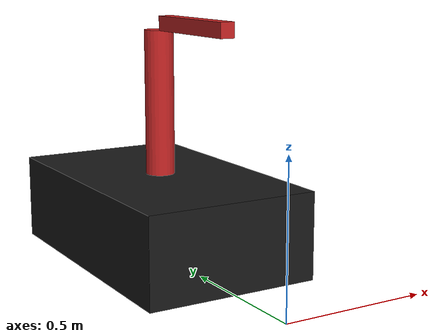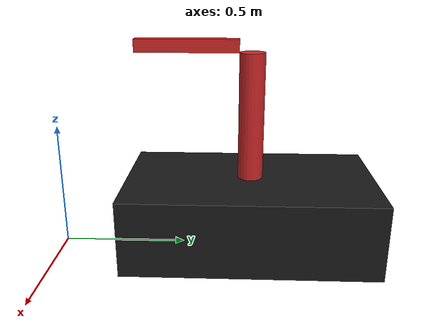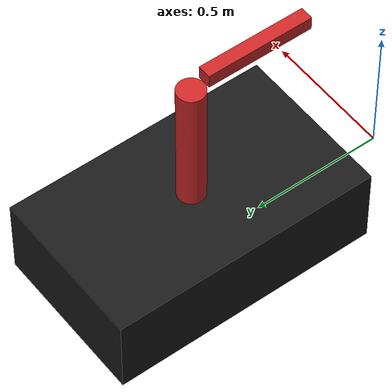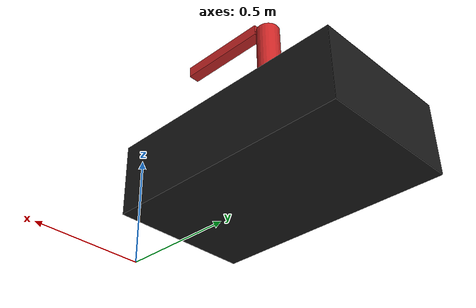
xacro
<?xml version="1.0"?>
<robot xmlns:xacro="http://wiki.ros.org/xacro" name="test">

  <!-- Add for independent usage of the person model -->
  <link name="world"/>
  <!-- Chair model -->

  <link name="chair_base" >
    <inertial>
      <origin xyz="0.0 0.0 0.0" />
      <mass value="1.0" />
      <inertia  ixx="1.0" ixy="0.0"  ixz="0.0"  iyy="100.0"  iyz="0.0"  izz="1.0" />
    </inertial>
    <visual>
      <origin xyz="0.0 0.0 0.0" rpy="0.0 0.0 0.0" />
      <geometry>
        <box size="0.60 1.00 0.30"/>
      </geometry>
      <material name="LightGrey">
        <color rgba="0.1 0.1 0.1 1"/>
      </material>
    </visual>
    <collision>
      <origin xyz="0.0 0.0 0.0" rpy="0.0 0.0 0.0" />
      <geometry>
        <box size="0.60 1.00 0.30"/>
      </geometry>
    </collision>
  </link>
  <gazebo reference="chair_base">
    <material>Gazebo/Gray</material>
  </gazebo>

  <joint name="chair_base_joint" type="fixed">
    <parent link="world" />
    <child link = "chair_base" />
    <origin xyz="0.0 0.78 0.15" rpy="0.0 0.0 0.0" />
  </joint>

  <link name="pilar">
    <inertial>
      <origin xyz="0.0 0.0 0.0" />
      <mass value="1.0" />
      <inertia  ixx="1.0" ixy="0.0"  ixz="0.0"  iyy="100.0"  iyz="0.0"  izz="1.0" />
    </inertial>
    <visual>
      <origin rpy="0 0 0" xyz="0 0 0 "/>
      <geometry>
        <cylinder radius="0.05" length="0.5"/> <!-- length values changes with dimension of the body 0.145*H -->
      </geometry>
    </visual>
    <collision>
      <geometry>
        <cylinder radius="0.05" length="0.5"/>
      </geometry>
    </collision>
  </link>
  <gazebo reference="pilar">
    <material>Gazebo/Red</material>
  </gazebo>

  <joint name="chair_pilar_joint" type="fixed">
    <parent link="chair_base" />
    <child link = "pilar" />
    <origin xyz="0.0 0.0 0.4" rpy="0.0 0.0 0.0" />
  </joint>

  <link name="arm" >
    <inertial>
      <origin xyz="0.0 0.0 0.0" />
      <mass value="1.0" />
      <inertia  ixx="1.0" ixy="0.0"  ixz="0.0"  iyy="100.0"  iyz="0.0"  izz="1.0" />
    </inertial>
    <visual>
      <origin xyz="0.0 -0.2 0.025" rpy="0.0 0.0 0.0" />
      <geometry>
        <box size="0.05 0.4 0.05"/>
      </geometry>
    </visual>
    <collision>
      <origin xyz="0.0 -0.2 0.025" rpy="0.0 0.0 0.0" />
      <geometry>
        <box size="0.05 0.4 0.05"/>
      </geometry>
    </collision>
  </link>
  <gazebo reference="arm">
    <material>Gazebo/Red</material>
  </gazebo>

  <joint name="pilar_arm_joint" type="revolute">
    <limit effort="1000.0" lower="-3.14" upper="3.14" velocity="0.2"/>
    <!--limit effort="1000.0" lower="1.57" upper="-1.57" velocity="0.2" /-->
    <axis xyz= "1 0 0" />
    <parent link="pilar" />
    <child link = "arm" />
    <origin xyz="0.0 -0.05 0.25" rpy="0.0 0.0 0.0" />
  </joint>

  <transmission name="arm_trans">
    <type>transmission_interface/SimpleTransmission</type>
    <joint name="pilar_arm_joint">
      <hardwareInterface>hardware_interface/EffortJointInterface</hardwareInterface>
    </joint>
    <actuator name="motor1">
      <mechanicalInterface>1</mechanicalInterface>
    </actuator>
  </transmission>

  <gazebo>
    <plugin name="gazebo_ros_control" filename="libgazebo_ros_control.so">
      <robotNamespace>simple_model</robotNamespace>
    </plugin>
  </gazebo>

</robot>
